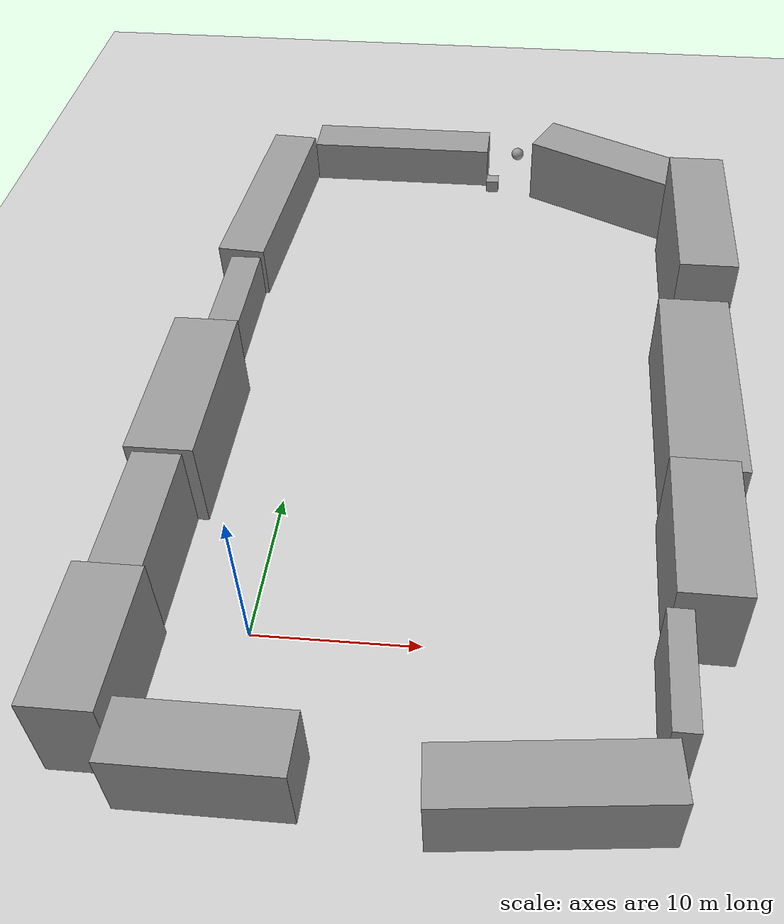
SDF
<sdf version="1.4">
 <world name="tunnel">
  <light name="sun" type="directional">
   <cast_shadows>0</cast_shadows>
   <pose>0 0 10 0 -0 0</pose>
   <diffuse>0.8 0.8 0.8 1</diffuse>
   <specular>0.2 0.2 0.2 1</specular>
   <attenuation>
    <range>1000</range>
    <constant>0.9</constant>
    <linear>0.01</linear>
    <quadratic>0.001</quadratic>
   </attenuation>
   <direction>-0.5 0.1 -0.9</direction>
  </light>
  <model name="ground_plane">
   <static>1</static>
   <link name="link">
    <collision name="collision">
     <geometry><plane><normal>0 0 1</normal><size>100 100</size></plane></geometry>
     <surface><friction><ode><mu>100</mu><mu2>50</mu2></ode></friction></surface>
    </collision>
    <visual name="visual">
     <cast_shadows>0</cast_shadows>
     <geometry><plane><normal>0 0 1</normal><size>100 100</size></plane></geometry>
     <material>
      <script><uri>file://media/materials/scripts/gazebo.material</uri><name>Gazebo/Grey</name></script>
     </material>
    </visual>
    <velocity_decay><linear>0</linear><angular>0</angular></velocity_decay>
   </link>
  </model>
  <physics type="ode">
   <max_step_size>0.001</max_step_size>
   <real_time_factor>1</real_time_factor>
   <real_time_update_rate>1000</real_time_update_rate>
   <gravity>0 0 -9.8</gravity>
  </physics>
  <scene><ambient>0.4 0.4 0.4 1</ambient><background>0.7 0.7 0.7 1</background><shadows>0</shadows></scene>
  <spherical_coordinates>
   <surface_model>EARTH_WGS84</surface_model>
   <latitude_deg>0</latitude_deg>
   <longitude_deg>0</longitude_deg>
   <elevation>0</elevation>
   <heading_deg>0</heading_deg>
  </spherical_coordinates>
  <model name="unit_box_1">
   <pose>-6.83339 -4.6319 3.20015 0 -0 -0.001832</pose>
   <link name="link">
    <inertial>
     <mass>1</mass>
     <inertia><ixx>1</ixx><ixy>0</ixy><ixz>0</ixz><iyy>1</iyy><iyz>0</iyz><izz>1</izz></inertia>
    </inertial>
    <collision name="collision"><geometry><box><size>4.03529 8.7 6.40031</size></box></geometry></collision>
    <visual name="visual">
     <geometry><box><size>4.03529 8.7 6.40031</size></box></geometry>
     <material>
      <script><uri>file://media/materials/scripts/gazebo.material</uri><name>Gazebo/Grey</name></script>
     </material>
    </visual>
    <velocity_decay><linear>0</linear><angular>0</angular></velocity_decay>
   </link>
   <static>0</static>
  </model>
  <model name="unit_box_3">
   <pose>-6.58276 3.91092 3.04757 -2e-06 -0 0.000922</pose>
   <link name="link">
    <inertial>
     <mass>1</mass>
     <inertia><ixx>1</ixx><ixy>0</ixy><ixz>0</ixz><iyy>1</iyy><iyz>0</iyz><izz>1</izz></inertia>
    </inertial>
    <collision name="collision"><geometry><box><size>3.03634 8.35188 6.09516</size></box></geometry></collision>
    <visual name="visual">
     <geometry><box><size>3.03634 8.35188 6.09516</size></box></geometry>
     <material>
      <script><uri>file://media/materials/scripts/gazebo.material</uri><name>Gazebo/Grey</name></script>
     </material>
    </visual>
    <velocity_decay><linear>0</linear><angular>0</angular></velocity_decay>
   </link>
   <static>0</static>
  </model>
  <model name="unit_box_5">
   <pose>-6.47347 14.021 3.21066 9.7e-05 -8.27181e-25 4e-05</pose>
   <link name="link">
    <inertial>
     <mass>1</mass>
     <inertia><ixx>1</ixx><ixy>0</ixy><ixz>0</ixz><iyy>1</iyy><iyz>0</iyz><izz>1</izz></inertia>
    </inertial>
    <collision name="collision"><geometry><box><size>4.22148 11.7815 6.42246</size></box></geometry></collision>
    <visual name="visual">
     <geometry><box><size>4.22148 11.7815 6.42246</size></box></geometry>
     <material>
      <script><uri>file://media/materials/scripts/gazebo.material</uri><name>Gazebo/Grey</name></script>
     </material>
    </visual>
    <velocity_decay><linear>0</linear><angular>0</angular></velocity_decay>
   </link>
   <static>0</static>
  </model>
  <model name="unit_box_6">
   <pose>-6.54236 25.2152 1.73998 -0.000156 -0 6.2e-05</pose>
   <link name="link">
    <inertial>
     <mass>1</mass>
     <inertia><ixx>1</ixx><ixy>0</ixy><ixz>0</ixz><iyy>1</iyy><iyz>0</iyz><izz>1</izz></inertia>
    </inertial>
    <collision name="collision"><geometry><box><size>2.20876 10.6046 3.48161</size></box></geometry></collision>
    <visual name="visual">
     <geometry><box><size>2.20876 10.6046 3.48161</size></box></geometry>
     <material>
      <script><uri>file://media/materials/scripts/gazebo.material</uri><name>Gazebo/Grey</name></script>
     </material>
    </visual>
    <velocity_decay><linear>0</linear><angular>0</angular></velocity_decay>
   </link>
   <static>0</static>
  </model>
  <model name="unit_box_8">
   <pose>23.8531 -3.37534 2.59499 0 -1e-06 -0.012957</pose>
   <link name="link">
    <inertial>
     <mass>1</mass>
     <inertia><ixx>1</ixx><ixy>0</ixy><ixz>0</ixz><iyy>1</iyy><iyz>0</iyz><izz>1</izz></inertia>
    </inertial>
    <collision name="collision"><geometry><box><size>1.50314 7.26583 5.18998</size></box></geometry></collision>
    <visual name="visual">
     <geometry><box><size>1.50314 7.26583 5.18998</size></box></geometry>
     <material>
      <script><uri>file://media/materials/scripts/gazebo.material</uri><name>Gazebo/Grey</name></script>
     </material>
    </visual>
    <velocity_decay><linear>0</linear><angular>0</angular></velocity_decay>
   </link>
   <static>0</static>
  </model>
  <model name="unit_box_9">
   <pose>25.6383 5.04691 3.29856 -2e-06 -0 -0.010437</pose>
   <link name="link">
    <inertial>
     <mass>1</mass>
     <inertia><ixx>1</ixx><ixy>0</ixy><ixz>0</ixz><iyy>1</iyy><iyz>0</iyz><izz>1</izz></inertia>
    </inertial>
    <collision name="collision"><geometry><box><size>4.14454 9.61053 6.59714</size></box></geometry></collision>
    <visual name="visual">
     <geometry><box><size>4.14454 9.61053 6.59714</size></box></geometry>
     <material>
      <script><uri>file://media/materials/scripts/gazebo.material</uri><name>Gazebo/Grey</name></script>
     </material>
    </visual>
    <velocity_decay><linear>0</linear><angular>0</angular></velocity_decay>
   </link>
   <static>0</static>
  </model>
  <model name="unit_box_10">
   <pose>26.1823 17.7299 2.81248 -1.57079 -1.57032 1.57082</pose>
   <link name="link">
    <inertial>
     <mass>1</mass>
     <inertia><ixx>1</ixx><ixy>0</ixy><ixz>0</ixz><iyy>1</iyy><iyz>0</iyz><izz>1</izz></inertia>
    </inertial>
    <collision name="collision"><geometry><box><size>5.63244 15.7172 4.77505</size></box></geometry></collision>
    <visual name="visual">
     <geometry><box><size>5.63244 15.7172 4.77505</size></box></geometry>
     <material>
      <script><uri>file://media/materials/scripts/gazebo.material</uri><name>Gazebo/Grey</name></script>
     </material>
    </visual>
    <velocity_decay><linear>0</linear><angular>0</angular></velocity_decay>
   </link>
   <static>0</static>
  </model>
  <model name="unit_box_11">
   <pose>26.7971 32.1463 4.32027 -0.00028 0.000577 0.000674</pose>
   <link name="link">
    <inertial>
     <mass>1</mass>
     <inertia><ixx>1</ixx><ixy>0</ixy><ixz>0</ixz><iyy>1</iyy><iyz>0</iyz><izz>1</izz></inertia>
    </inertial>
    <collision name="collision"><geometry><box><size>3.93303 13.108 8.68102</size></box></geometry></collision>
    <visual name="visual">
     <geometry><box><size>3.93303 13.108 8.68102</size></box></geometry>
     <material>
      <script><uri>file://media/materials/scripts/gazebo.material</uri><name>Gazebo/Grey</name></script>
     </material>
    </visual>
    <velocity_decay><linear>0</linear><angular>0</angular></velocity_decay>
   </link>
   <static>0</static>
  </model>
  <model name="unit_box_12">
   <pose>-6.37347 38.816 1.9572 0 -1e-06 -0.068287</pose>
   <link name="link">
    <inertial>
     <mass>1</mass>
     <inertia><ixx>1</ixx><ixy>0</ixy><ixz>0</ixz><iyy>1</iyy><iyz>0</iyz><izz>1</izz></inertia>
    </inertial>
    <collision name="collision"><geometry><box><size>3.46826 16.1805 3.91441</size></box></geometry></collision>
    <visual name="visual">
     <geometry><box><size>3.46826 16.1805 3.91441</size></box></geometry>
     <material>
      <script><uri>file://media/materials/scripts/gazebo.material</uri><name>Gazebo/Grey</name></script>
     </material>
    </visual>
    <velocity_decay><linear>0</linear><angular>0</angular></velocity_decay>
   </link>
   <static>0</static>
  </model>
  <model name="unit_box_13">
   <pose>21.9612 43.7402 2.61187 2e-06 2.11758e-22 -0.449712</pose>
   <link name="link">
    <inertial>
     <mass>1</mass>
     <inertia><ixx>1</ixx><ixy>0</ixy><ixz>0</ixz><iyy>1</iyy><iyz>0</iyz><izz>1</izz></inertia>
    </inertial>
    <collision name="collision"><geometry><box><size>14.9694 3.78198 5.22374</size></box></geometry></collision>
    <visual name="visual">
     <geometry><box><size>14.9694 3.78198 5.22374</size></box></geometry>
     <material>
      <script><uri>file://media/materials/scripts/gazebo.material</uri><name>Gazebo/Grey</name></script>
     </material>
    </visual>
    <velocity_decay><linear>0</linear><angular>0</angular></velocity_decay>
   </link>
   <static>0</static>
  </model>
  <model name="unit_box_14">
   <pose>3.28536 48.2688 1.66055 2e-06 -5.16988e-26 8.5e-05</pose>
   <link name="link">
    <inertial>
     <mass>1</mass>
     <inertia><ixx>1</ixx><ixy>0</ixy><ixz>0</ixz><iyy>1</iyy><iyz>0</iyz><izz>1</izz></inertia>
    </inertial>
    <collision name="collision"><geometry><box><size>14.6687 3.13623 3.32111</size></box></geometry></collision>
    <visual name="visual">
     <geometry><box><size>14.6687 3.13623 3.32111</size></box></geometry>
     <material>
      <script><uri>file://media/materials/scripts/gazebo.material</uri><name>Gazebo/Grey</name></script>
     </material>
    </visual>
    <velocity_decay><linear>0</linear><angular>0</angular></velocity_decay>
   </link>
   <static>0</static>
  </model>
  <model name="unit_sphere_2">
   <pose>13.1384 48.1561 2.3714 0.281409 0.525201 -0.569719</pose>
   <link name="link">
    <inertial>
     <mass>1</mass>
     <inertia><ixx>1</ixx><ixy>0</ixy><ixz>0</ixz><iyy>1</iyy><iyz>0</iyz><izz>1</izz></inertia>
    </inertial>
    <collision name="collision"><geometry><sphere><radius>2.3714</radius></sphere></geometry></collision>
    <visual name="visual">
     <geometry><sphere><radius>0.5</radius></sphere></geometry>
     <material>
      <script><uri>file://media/materials/scripts/gazebo.material</uri><name>Gazebo/Grey</name></script>
     </material>
    </visual>
    <velocity_decay><linear>0</linear><angular>0</angular></velocity_decay>
   </link>
   <static>0</static>
  </model>
  <model name="unit_box_15">
   <pose>15.0371 50.0304 0.5 0 -0 0.003619</pose>
   <link name="link">
    <inertial>
     <mass>1</mass>
     <inertia><ixx>1</ixx><ixy>0</ixy><ixz>0</ixz><iyy>1</iyy><iyz>0</iyz><izz>1</izz></inertia>
    </inertial>
    <collision name="collision"><geometry><box><size>1 1 1</size></box></geometry></collision>
    <visual name="visual">
     <geometry><box><size>1 1 1</size></box></geometry>
     <material>
      <script><uri>file://media/materials/scripts/gazebo.material</uri><name>Gazebo/Grey</name></script>
     </material>
    </visual>
    <velocity_decay><linear>0</linear><angular>0</angular></velocity_decay>
   </link>
   <static>0</static>
  </model>
  <model name="unit_box_16">
   <pose>11.1215 46.2792 0.5 0 -0 0</pose>
   <link name="link">
    <inertial>
     <mass>1</mass>
     <inertia><ixx>1</ixx><ixy>0</ixy><ixz>0</ixz><iyy>1</iyy><iyz>0</iyz><izz>1</izz></inertia>
    </inertial>
    <collision name="collision"><geometry><box><size>1 1 1</size></box></geometry></collision>
    <visual name="visual">
     <geometry><box><size>1 1 1</size></box></geometry>
     <material>
      <script><uri>file://media/materials/scripts/gazebo.material</uri><name>Gazebo/Grey</name></script>
     </material>
    </visual>
    <velocity_decay><linear>0</linear><angular>0</angular></velocity_decay>
   </link>
   <static>0</static>
  </model>
  <model name="unit_box_17">
   <pose>0.000261 -9.00108 2.45008 0 5.8e-05 2.1e-05</pose>
   <link name="link">
    <inertial>
     <mass>1</mass>
     <inertia><ixx>1</ixx><ixy>0</ixy><ixz>0</ixz><iyy>1</iyy><iyz>0</iyz><izz>1</izz></inertia>
    </inertial>
    <collision name="collision"><geometry><box><size>9.58577 3.57005 4.90072</size></box></geometry></collision>
    <visual name="visual">
     <geometry><box><size>9.58577 3.57005 4.90072</size></box></geometry>
     <material>
      <script><uri>file://media/materials/scripts/gazebo.material</uri><name>Gazebo/Grey</name></script>
     </material>
    </visual>
    <velocity_decay><linear>0</linear><angular>0</angular></velocity_decay>
   </link>
   <static>0</static>
  </model>
  <model name="unit_box_18">
   <pose>17.4399 -9.33497 2.33976 1.4e-05 -8e-06 0.102439</pose>
   <link name="link">
    <inertial>
     <mass>1</mass>
     <inertia><ixx>1</ixx><ixy>0</ixy><ixz>0</ixz><iyy>1</iyy><iyz>0</iyz><izz>1</izz></inertia>
    </inertial>
    <collision name="collision"><geometry><box><size>12.7085 3.37714 4.67945</size></box></geometry></collision>
    <visual name="visual">
     <geometry><box><size>12.7085 3.37714 4.67945</size></box></geometry>
     <material>
      <script><uri>file://media/materials/scripts/gazebo.material</uri><name>Gazebo/Grey</name></script>
     </material>
    </visual>
    <velocity_decay><linear>0</linear><angular>0</angular></velocity_decay>
   </link>
   <static>0</static>
  </model>
 </world>
</sdf>
